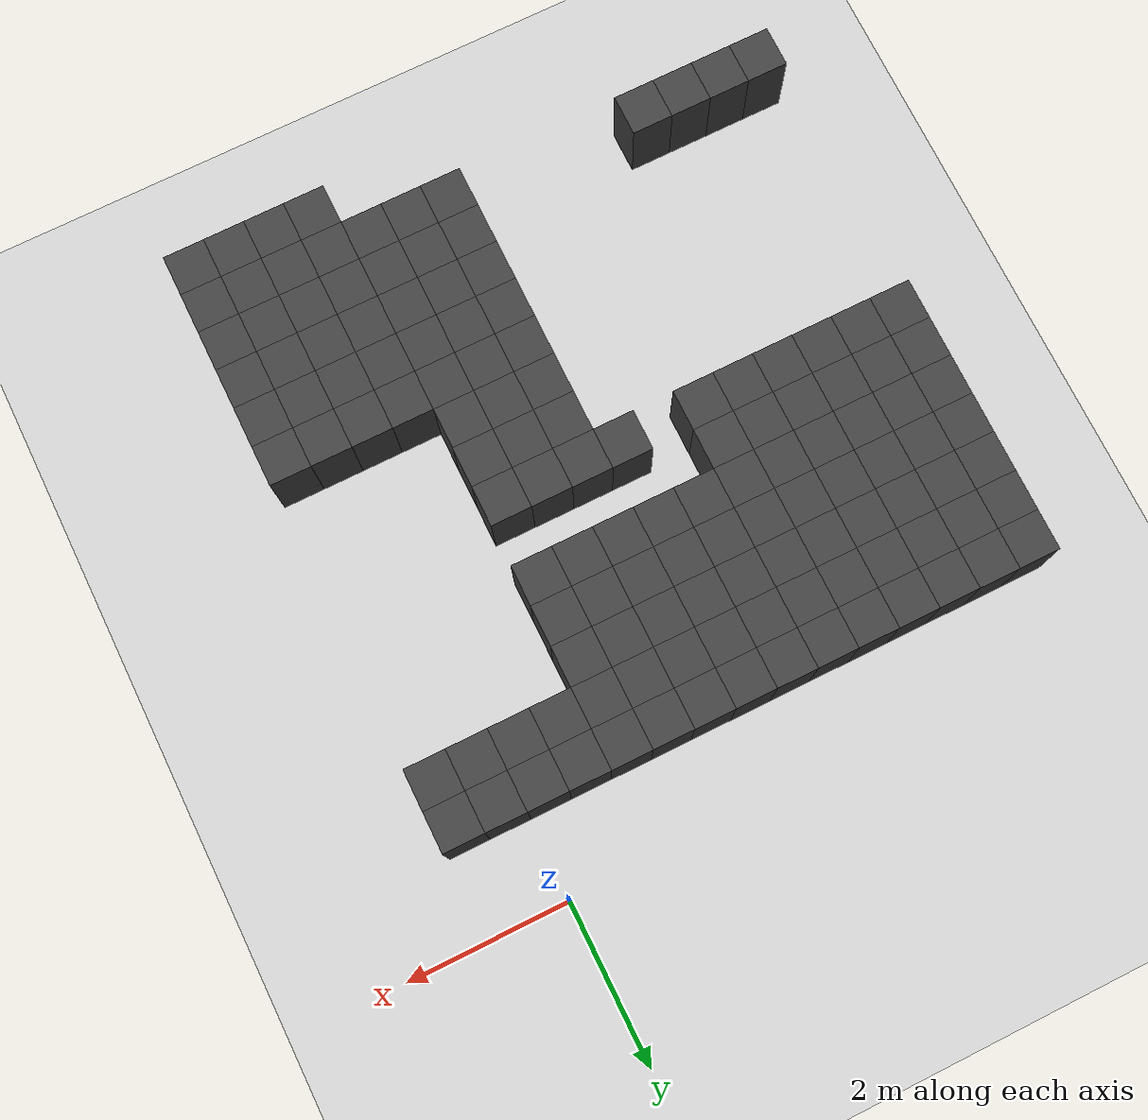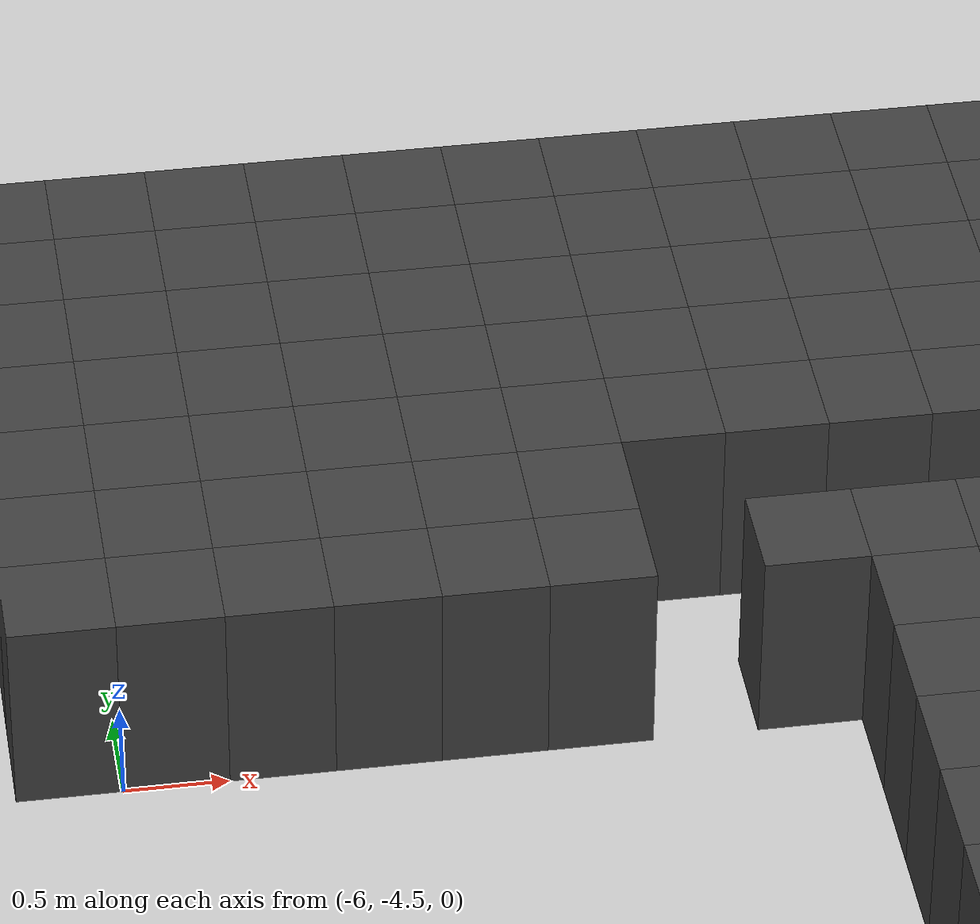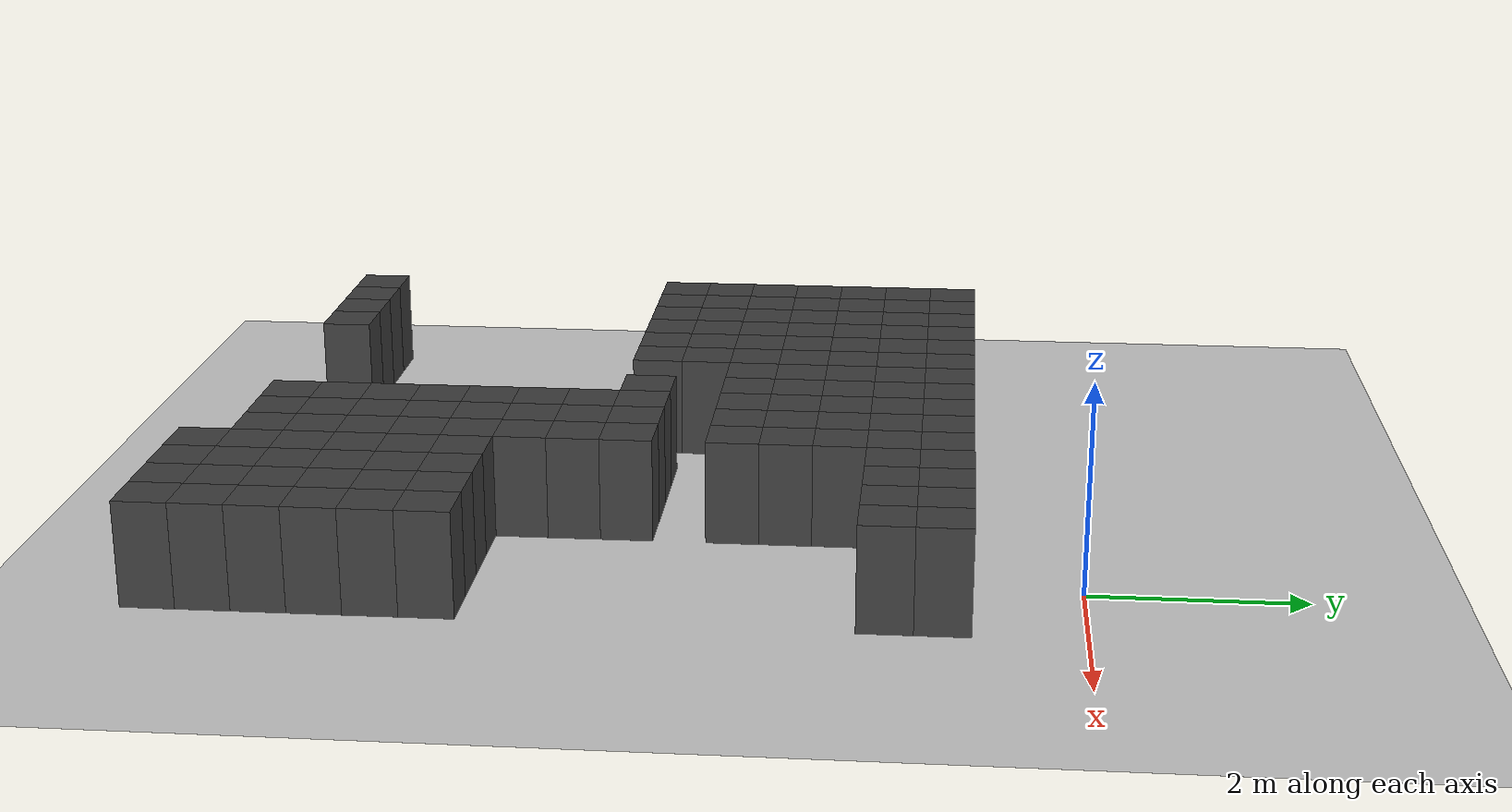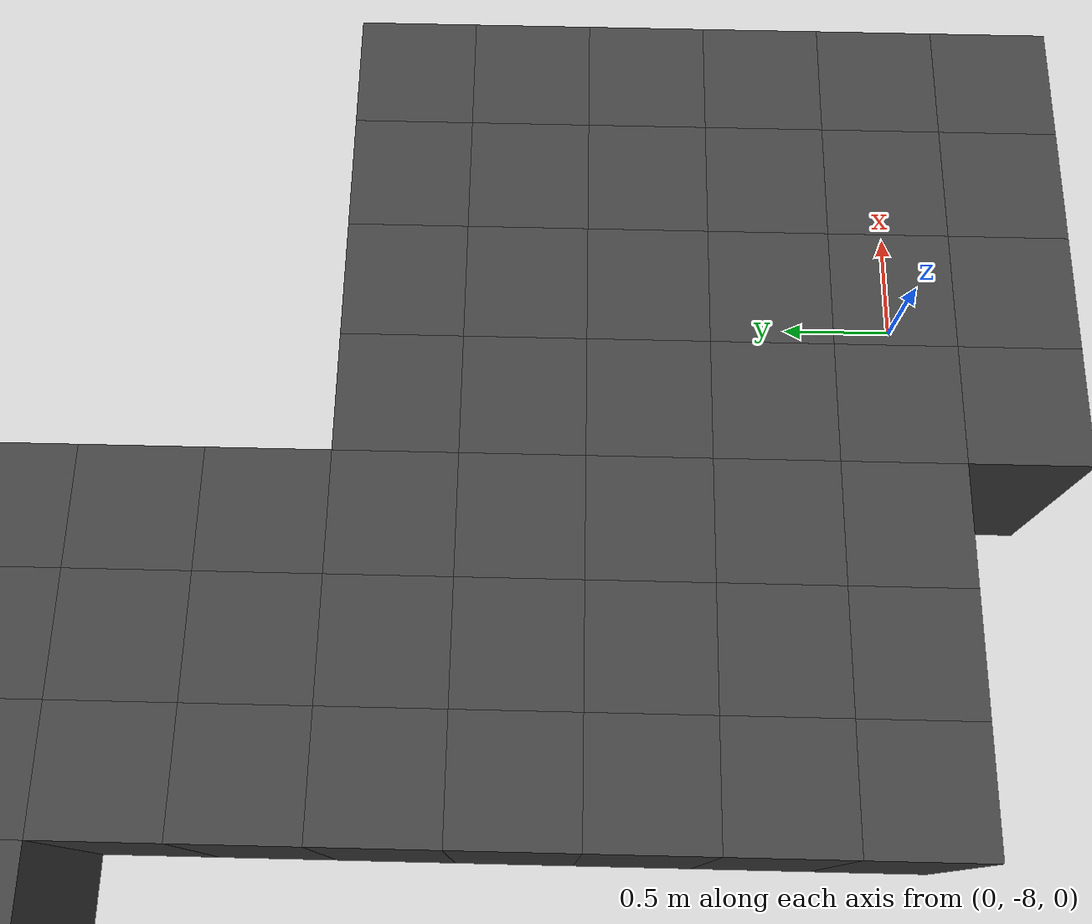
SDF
<sdf version="1.7">
 <world name="map_12356">
  <model name="ground_plane">
   <static>true</static>
   <link name="link">
    <collision name="collision">
     <geometry><plane><normal>0 0 1</normal><size>200 200</size></plane></geometry>
    </collision>
    <visual name="visual">
     <geometry><plane><normal>0 0 1</normal><size>200 200</size></plane></geometry>
     <material><ambient>0.8 0.8 0.8 1</ambient><diffuse>0.8 0.8 0.8 1</diffuse></material>
    </visual>
   </link>
  </model>
  <model name="maze_environment">
   <static>true</static>
   <link name="wall_1064">
    <pose>-6.250 -1.250 0.500 0 0 0</pose>
    <collision name="col"><geometry><box><size>0.5 0.5 1.0</size></box></geometry></collision>
    <visual name="vis">
     <geometry><box><size>0.5 0.5 1.0</size></box></geometry>
     <material><ambient>0.15 0.15 0.15 1</ambient><diffuse>0.25 0.25 0.25 1</diffuse></material>
    </visual>
   </link>
   <link name="wall_1065">
    <pose>-5.750 -1.250 0.500 0 0 0</pose>
    <collision name="col"><geometry><box><size>0.5 0.5 1.0</size></box></geometry></collision>
    <visual name="vis">
     <geometry><box><size>0.5 0.5 1.0</size></box></geometry>
     <material><ambient>0.15 0.15 0.15 1</ambient><diffuse>0.25 0.25 0.25 1</diffuse></material>
    </visual>
   </link>
   <link name="wall_1066">
    <pose>-5.250 -1.250 0.500 0 0 0</pose>
    <collision name="col"><geometry><box><size>0.5 0.5 1.0</size></box></geometry></collision>
    <visual name="vis">
     <geometry><box><size>0.5 0.5 1.0</size></box></geometry>
     <material><ambient>0.15 0.15 0.15 1</ambient><diffuse>0.25 0.25 0.25 1</diffuse></material>
    </visual>
   </link>
   <link name="wall_1067">
    <pose>-4.750 -1.250 0.500 0 0 0</pose>
    <collision name="col"><geometry><box><size>0.5 0.5 1.0</size></box></geometry></collision>
    <visual name="vis">
     <geometry><box><size>0.5 0.5 1.0</size></box></geometry>
     <material><ambient>0.15 0.15 0.15 1</ambient><diffuse>0.25 0.25 0.25 1</diffuse></material>
    </visual>
   </link>
   <link name="wall_1068">
    <pose>-4.250 -1.250 0.500 0 0 0</pose>
    <collision name="col"><geometry><box><size>0.5 0.5 1.0</size></box></geometry></collision>
    <visual name="vis">
     <geometry><box><size>0.5 0.5 1.0</size></box></geometry>
     <material><ambient>0.15 0.15 0.15 1</ambient><diffuse>0.25 0.25 0.25 1</diffuse></material>
    </visual>
   </link>
   <link name="wall_1069">
    <pose>-3.750 -1.250 0.500 0 0 0</pose>
    <collision name="col"><geometry><box><size>0.5 0.5 1.0</size></box></geometry></collision>
    <visual name="vis">
     <geometry><box><size>0.5 0.5 1.0</size></box></geometry>
     <material><ambient>0.15 0.15 0.15 1</ambient><diffuse>0.25 0.25 0.25 1</diffuse></material>
    </visual>
   </link>
   <link name="wall_1070">
    <pose>-3.250 -1.250 0.500 0 0 0</pose>
    <collision name="col"><geometry><box><size>0.5 0.5 1.0</size></box></geometry></collision>
    <visual name="vis">
     <geometry><box><size>0.5 0.5 1.0</size></box></geometry>
     <material><ambient>0.15 0.15 0.15 1</ambient><diffuse>0.25 0.25 0.25 1</diffuse></material>
    </visual>
   </link>
   <link name="wall_1071">
    <pose>-2.750 -1.250 0.500 0 0 0</pose>
    <collision name="col"><geometry><box><size>0.5 0.5 1.0</size></box></geometry></collision>
    <visual name="vis">
     <geometry><box><size>0.5 0.5 1.0</size></box></geometry>
     <material><ambient>0.15 0.15 0.15 1</ambient><diffuse>0.25 0.25 0.25 1</diffuse></material>
    </visual>
   </link>
   <link name="wall_1072">
    <pose>-2.250 -1.250 0.500 0 0 0</pose>
    <collision name="col"><geometry><box><size>0.5 0.5 1.0</size></box></geometry></collision>
    <visual name="vis">
     <geometry><box><size>0.5 0.5 1.0</size></box></geometry>
     <material><ambient>0.15 0.15 0.15 1</ambient><diffuse>0.25 0.25 0.25 1</diffuse></material>
    </visual>
   </link>
   <link name="wall_1073">
    <pose>-1.750 -1.250 0.500 0 0 0</pose>
    <collision name="col"><geometry><box><size>0.5 0.5 1.0</size></box></geometry></collision>
    <visual name="vis">
     <geometry><box><size>0.5 0.5 1.0</size></box></geometry>
     <material><ambient>0.15 0.15 0.15 1</ambient><diffuse>0.25 0.25 0.25 1</diffuse></material>
    </visual>
   </link>
   <link name="wall_1074">
    <pose>-1.250 -1.250 0.500 0 0 0</pose>
    <collision name="col"><geometry><box><size>0.5 0.5 1.0</size></box></geometry></collision>
    <visual name="vis">
     <geometry><box><size>0.5 0.5 1.0</size></box></geometry>
     <material><ambient>0.15 0.15 0.15 1</ambient><diffuse>0.25 0.25 0.25 1</diffuse></material>
    </visual>
   </link>
   <link name="wall_1075">
    <pose>-0.750 -1.250 0.500 0 0 0</pose>
    <collision name="col"><geometry><box><size>0.5 0.5 1.0</size></box></geometry></collision>
    <visual name="vis">
     <geometry><box><size>0.5 0.5 1.0</size></box></geometry>
     <material><ambient>0.15 0.15 0.15 1</ambient><diffuse>0.25 0.25 0.25 1</diffuse></material>
    </visual>
   </link>
   <link name="wall_1076">
    <pose>-0.250 -1.250 0.500 0 0 0</pose>
    <collision name="col"><geometry><box><size>0.5 0.5 1.0</size></box></geometry></collision>
    <visual name="vis">
     <geometry><box><size>0.5 0.5 1.0</size></box></geometry>
     <material><ambient>0.15 0.15 0.15 1</ambient><diffuse>0.25 0.25 0.25 1</diffuse></material>
    </visual>
   </link>
   <link name="wall_1077">
    <pose>0.250 -1.250 0.500 0 0 0</pose>
    <collision name="col"><geometry><box><size>0.5 0.5 1.0</size></box></geometry></collision>
    <visual name="vis">
     <geometry><box><size>0.5 0.5 1.0</size></box></geometry>
     <material><ambient>0.15 0.15 0.15 1</ambient><diffuse>0.25 0.25 0.25 1</diffuse></material>
    </visual>
   </link>
   <link name="wall_1078">
    <pose>0.750 -1.250 0.500 0 0 0</pose>
    <collision name="col"><geometry><box><size>0.5 0.5 1.0</size></box></geometry></collision>
    <visual name="vis">
     <geometry><box><size>0.5 0.5 1.0</size></box></geometry>
     <material><ambient>0.15 0.15 0.15 1</ambient><diffuse>0.25 0.25 0.25 1</diffuse></material>
    </visual>
   </link>
   <link name="wall_1106">
    <pose>-6.250 -1.750 0.500 0 0 0</pose>
    <collision name="col"><geometry><box><size>0.5 0.5 1.0</size></box></geometry></collision>
    <visual name="vis">
     <geometry><box><size>0.5 0.5 1.0</size></box></geometry>
     <material><ambient>0.15 0.15 0.15 1</ambient><diffuse>0.25 0.25 0.25 1</diffuse></material>
    </visual>
   </link>
   <link name="wall_1107">
    <pose>-5.750 -1.750 0.500 0 0 0</pose>
    <collision name="col"><geometry><box><size>0.5 0.5 1.0</size></box></geometry></collision>
    <visual name="vis">
     <geometry><box><size>0.5 0.5 1.0</size></box></geometry>
     <material><ambient>0.15 0.15 0.15 1</ambient><diffuse>0.25 0.25 0.25 1</diffuse></material>
    </visual>
   </link>
   <link name="wall_1108">
    <pose>-5.250 -1.750 0.500 0 0 0</pose>
    <collision name="col"><geometry><box><size>0.5 0.5 1.0</size></box></geometry></collision>
    <visual name="vis">
     <geometry><box><size>0.5 0.5 1.0</size></box></geometry>
     <material><ambient>0.15 0.15 0.15 1</ambient><diffuse>0.25 0.25 0.25 1</diffuse></material>
    </visual>
   </link>
   <link name="wall_1109">
    <pose>-4.750 -1.750 0.500 0 0 0</pose>
    <collision name="col"><geometry><box><size>0.5 0.5 1.0</size></box></geometry></collision>
    <visual name="vis">
     <geometry><box><size>0.5 0.5 1.0</size></box></geometry>
     <material><ambient>0.15 0.15 0.15 1</ambient><diffuse>0.25 0.25 0.25 1</diffuse></material>
    </visual>
   </link>
   <link name="wall_1110">
    <pose>-4.250 -1.750 0.500 0 0 0</pose>
    <collision name="col"><geometry><box><size>0.5 0.5 1.0</size></box></geometry></collision>
    <visual name="vis">
     <geometry><box><size>0.5 0.5 1.0</size></box></geometry>
     <material><ambient>0.15 0.15 0.15 1</ambient><diffuse>0.25 0.25 0.25 1</diffuse></material>
    </visual>
   </link>
   <link name="wall_1111">
    <pose>-3.750 -1.750 0.500 0 0 0</pose>
    <collision name="col"><geometry><box><size>0.5 0.5 1.0</size></box></geometry></collision>
    <visual name="vis">
     <geometry><box><size>0.5 0.5 1.0</size></box></geometry>
     <material><ambient>0.15 0.15 0.15 1</ambient><diffuse>0.25 0.25 0.25 1</diffuse></material>
    </visual>
   </link>
   <link name="wall_1112">
    <pose>-3.250 -1.750 0.500 0 0 0</pose>
    <collision name="col"><geometry><box><size>0.5 0.5 1.0</size></box></geometry></collision>
    <visual name="vis">
     <geometry><box><size>0.5 0.5 1.0</size></box></geometry>
     <material><ambient>0.15 0.15 0.15 1</ambient><diffuse>0.25 0.25 0.25 1</diffuse></material>
    </visual>
   </link>
   <link name="wall_1113">
    <pose>-2.750 -1.750 0.500 0 0 0</pose>
    <collision name="col"><geometry><box><size>0.5 0.5 1.0</size></box></geometry></collision>
    <visual name="vis">
     <geometry><box><size>0.5 0.5 1.0</size></box></geometry>
     <material><ambient>0.15 0.15 0.15 1</ambient><diffuse>0.25 0.25 0.25 1</diffuse></material>
    </visual>
   </link>
   <link name="wall_1114">
    <pose>-2.250 -1.750 0.500 0 0 0</pose>
    <collision name="col"><geometry><box><size>0.5 0.5 1.0</size></box></geometry></collision>
    <visual name="vis">
     <geometry><box><size>0.5 0.5 1.0</size></box></geometry>
     <material><ambient>0.15 0.15 0.15 1</ambient><diffuse>0.25 0.25 0.25 1</diffuse></material>
    </visual>
   </link>
   <link name="wall_1115">
    <pose>-1.750 -1.750 0.500 0 0 0</pose>
    <collision name="col"><geometry><box><size>0.5 0.5 1.0</size></box></geometry></collision>
    <visual name="vis">
     <geometry><box><size>0.5 0.5 1.0</size></box></geometry>
     <material><ambient>0.15 0.15 0.15 1</ambient><diffuse>0.25 0.25 0.25 1</diffuse></material>
    </visual>
   </link>
   <link name="wall_1116">
    <pose>-1.250 -1.750 0.500 0 0 0</pose>
    <collision name="col"><geometry><box><size>0.5 0.5 1.0</size></box></geometry></collision>
    <visual name="vis">
     <geometry><box><size>0.5 0.5 1.0</size></box></geometry>
     <material><ambient>0.15 0.15 0.15 1</ambient><diffuse>0.25 0.25 0.25 1</diffuse></material>
    </visual>
   </link>
   <link name="wall_1117">
    <pose>-0.750 -1.750 0.500 0 0 0</pose>
    <collision name="col"><geometry><box><size>0.5 0.5 1.0</size></box></geometry></collision>
    <visual name="vis">
     <geometry><box><size>0.5 0.5 1.0</size></box></geometry>
     <material><ambient>0.15 0.15 0.15 1</ambient><diffuse>0.25 0.25 0.25 1</diffuse></material>
    </visual>
   </link>
   <link name="wall_1118">
    <pose>-0.250 -1.750 0.500 0 0 0</pose>
    <collision name="col"><geometry><box><size>0.5 0.5 1.0</size></box></geometry></collision>
    <visual name="vis">
     <geometry><box><size>0.5 0.5 1.0</size></box></geometry>
     <material><ambient>0.15 0.15 0.15 1</ambient><diffuse>0.25 0.25 0.25 1</diffuse></material>
    </visual>
   </link>
   <link name="wall_1119">
    <pose>0.250 -1.750 0.500 0 0 0</pose>
    <collision name="col"><geometry><box><size>0.5 0.5 1.0</size></box></geometry></collision>
    <visual name="vis">
     <geometry><box><size>0.5 0.5 1.0</size></box></geometry>
     <material><ambient>0.15 0.15 0.15 1</ambient><diffuse>0.25 0.25 0.25 1</diffuse></material>
    </visual>
   </link>
   <link name="wall_1120">
    <pose>0.750 -1.750 0.500 0 0 0</pose>
    <collision name="col"><geometry><box><size>0.5 0.5 1.0</size></box></geometry></collision>
    <visual name="vis">
     <geometry><box><size>0.5 0.5 1.0</size></box></geometry>
     <material><ambient>0.15 0.15 0.15 1</ambient><diffuse>0.25 0.25 0.25 1</diffuse></material>
    </visual>
   </link>
   <link name="wall_1151">
    <pose>-6.250 -2.250 0.500 0 0 0</pose>
    <collision name="col"><geometry><box><size>0.5 0.5 1.0</size></box></geometry></collision>
    <visual name="vis">
     <geometry><box><size>0.5 0.5 1.0</size></box></geometry>
     <material><ambient>0.15 0.15 0.15 1</ambient><diffuse>0.25 0.25 0.25 1</diffuse></material>
    </visual>
   </link>
   <link name="wall_1152">
    <pose>-5.750 -2.250 0.500 0 0 0</pose>
    <collision name="col"><geometry><box><size>0.5 0.5 1.0</size></box></geometry></collision>
    <visual name="vis">
     <geometry><box><size>0.5 0.5 1.0</size></box></geometry>
     <material><ambient>0.15 0.15 0.15 1</ambient><diffuse>0.25 0.25 0.25 1</diffuse></material>
    </visual>
   </link>
   <link name="wall_1153">
    <pose>-5.250 -2.250 0.500 0 0 0</pose>
    <collision name="col"><geometry><box><size>0.5 0.5 1.0</size></box></geometry></collision>
    <visual name="vis">
     <geometry><box><size>0.5 0.5 1.0</size></box></geometry>
     <material><ambient>0.15 0.15 0.15 1</ambient><diffuse>0.25 0.25 0.25 1</diffuse></material>
    </visual>
   </link>
   <link name="wall_1154">
    <pose>-4.750 -2.250 0.500 0 0 0</pose>
    <collision name="col"><geometry><box><size>0.5 0.5 1.0</size></box></geometry></collision>
    <visual name="vis">
     <geometry><box><size>0.5 0.5 1.0</size></box></geometry>
     <material><ambient>0.15 0.15 0.15 1</ambient><diffuse>0.25 0.25 0.25 1</diffuse></material>
    </visual>
   </link>
   <link name="wall_1155">
    <pose>-4.250 -2.250 0.500 0 0 0</pose>
    <collision name="col"><geometry><box><size>0.5 0.5 1.0</size></box></geometry></collision>
    <visual name="vis">
     <geometry><box><size>0.5 0.5 1.0</size></box></geometry>
     <material><ambient>0.15 0.15 0.15 1</ambient><diffuse>0.25 0.25 0.25 1</diffuse></material>
    </visual>
   </link>
   <link name="wall_1156">
    <pose>-3.750 -2.250 0.500 0 0 0</pose>
    <collision name="col"><geometry><box><size>0.5 0.5 1.0</size></box></geometry></collision>
    <visual name="vis">
     <geometry><box><size>0.5 0.5 1.0</size></box></geometry>
     <material><ambient>0.15 0.15 0.15 1</ambient><diffuse>0.25 0.25 0.25 1</diffuse></material>
    </visual>
   </link>
   <link name="wall_1157">
    <pose>-3.250 -2.250 0.500 0 0 0</pose>
    <collision name="col"><geometry><box><size>0.5 0.5 1.0</size></box></geometry></collision>
    <visual name="vis">
     <geometry><box><size>0.5 0.5 1.0</size></box></geometry>
     <material><ambient>0.15 0.15 0.15 1</ambient><diffuse>0.25 0.25 0.25 1</diffuse></material>
    </visual>
   </link>
   <link name="wall_1158">
    <pose>-2.750 -2.250 0.500 0 0 0</pose>
    <collision name="col"><geometry><box><size>0.5 0.5 1.0</size></box></geometry></collision>
    <visual name="vis">
     <geometry><box><size>0.5 0.5 1.0</size></box></geometry>
     <material><ambient>0.15 0.15 0.15 1</ambient><diffuse>0.25 0.25 0.25 1</diffuse></material>
    </visual>
   </link>
   <link name="wall_1159">
    <pose>-2.250 -2.250 0.500 0 0 0</pose>
    <collision name="col"><geometry><box><size>0.5 0.5 1.0</size></box></geometry></collision>
    <visual name="vis">
     <geometry><box><size>0.5 0.5 1.0</size></box></geometry>
     <material><ambient>0.15 0.15 0.15 1</ambient><diffuse>0.25 0.25 0.25 1</diffuse></material>
    </visual>
   </link>
   <link name="wall_1160">
    <pose>-1.750 -2.250 0.500 0 0 0</pose>
    <collision name="col"><geometry><box><size>0.5 0.5 1.0</size></box></geometry></collision>
    <visual name="vis">
     <geometry><box><size>0.5 0.5 1.0</size></box></geometry>
     <material><ambient>0.15 0.15 0.15 1</ambient><diffuse>0.25 0.25 0.25 1</diffuse></material>
    </visual>
   </link>
   <link name="wall_1161">
    <pose>-1.250 -2.250 0.500 0 0 0</pose>
    <collision name="col"><geometry><box><size>0.5 0.5 1.0</size></box></geometry></collision>
    <visual name="vis">
     <geometry><box><size>0.5 0.5 1.0</size></box></geometry>
     <material><ambient>0.15 0.15 0.15 1</ambient><diffuse>0.25 0.25 0.25 1</diffuse></material>
    </visual>
   </link>
   <link name="wall_1192">
    <pose>-6.250 -2.750 0.500 0 0 0</pose>
    <collision name="col"><geometry><box><size>0.5 0.5 1.0</size></box></geometry></collision>
    <visual name="vis">
     <geometry><box><size>0.5 0.5 1.0</size></box></geometry>
     <material><ambient>0.15 0.15 0.15 1</ambient><diffuse>0.25 0.25 0.25 1</diffuse></material>
    </visual>
   </link>
   <link name="wall_1193">
    <pose>-5.750 -2.750 0.500 0 0 0</pose>
    <collision name="col"><geometry><box><size>0.5 0.5 1.0</size></box></geometry></collision>
    <visual name="vis">
     <geometry><box><size>0.5 0.5 1.0</size></box></geometry>
     <material><ambient>0.15 0.15 0.15 1</ambient><diffuse>0.25 0.25 0.25 1</diffuse></material>
    </visual>
   </link>
   <link name="wall_1194">
    <pose>-5.250 -2.750 0.500 0 0 0</pose>
    <collision name="col"><geometry><box><size>0.5 0.5 1.0</size></box></geometry></collision>
    <visual name="vis">
     <geometry><box><size>0.5 0.5 1.0</size></box></geometry>
     <material><ambient>0.15 0.15 0.15 1</ambient><diffuse>0.25 0.25 0.25 1</diffuse></material>
    </visual>
   </link>
   <link name="wall_1195">
    <pose>-4.750 -2.750 0.500 0 0 0</pose>
    <collision name="col"><geometry><box><size>0.5 0.5 1.0</size></box></geometry></collision>
    <visual name="vis">
     <geometry><box><size>0.5 0.5 1.0</size></box></geometry>
     <material><ambient>0.15 0.15 0.15 1</ambient><diffuse>0.25 0.25 0.25 1</diffuse></material>
    </visual>
   </link>
   <link name="wall_1196">
    <pose>-4.250 -2.750 0.500 0 0 0</pose>
    <collision name="col"><geometry><box><size>0.5 0.5 1.0</size></box></geometry></collision>
    <visual name="vis">
     <geometry><box><size>0.5 0.5 1.0</size></box></geometry>
     <material><ambient>0.15 0.15 0.15 1</ambient><diffuse>0.25 0.25 0.25 1</diffuse></material>
    </visual>
   </link>
   <link name="wall_1197">
    <pose>-3.750 -2.750 0.500 0 0 0</pose>
    <collision name="col"><geometry><box><size>0.5 0.5 1.0</size></box></geometry></collision>
    <visual name="vis">
     <geometry><box><size>0.5 0.5 1.0</size></box></geometry>
     <material><ambient>0.15 0.15 0.15 1</ambient><diffuse>0.25 0.25 0.25 1</diffuse></material>
    </visual>
   </link>
   <link name="wall_1198">
    <pose>-3.250 -2.750 0.500 0 0 0</pose>
    <collision name="col"><geometry><box><size>0.5 0.5 1.0</size></box></geometry></collision>
    <visual name="vis">
     <geometry><box><size>0.5 0.5 1.0</size></box></geometry>
     <material><ambient>0.15 0.15 0.15 1</ambient><diffuse>0.25 0.25 0.25 1</diffuse></material>
    </visual>
   </link>
   <link name="wall_1199">
    <pose>-2.750 -2.750 0.500 0 0 0</pose>
    <collision name="col"><geometry><box><size>0.5 0.5 1.0</size></box></geometry></collision>
    <visual name="vis">
     <geometry><box><size>0.5 0.5 1.0</size></box></geometry>
     <material><ambient>0.15 0.15 0.15 1</ambient><diffuse>0.25 0.25 0.25 1</diffuse></material>
    </visual>
   </link>
   <link name="wall_1200">
    <pose>-2.250 -2.750 0.500 0 0 0</pose>
    <collision name="col"><geometry><box><size>0.5 0.5 1.0</size></box></geometry></collision>
    <visual name="vis">
     <geometry><box><size>0.5 0.5 1.0</size></box></geometry>
     <material><ambient>0.15 0.15 0.15 1</ambient><diffuse>0.25 0.25 0.25 1</diffuse></material>
    </visual>
   </link>
   <link name="wall_1201">
    <pose>-1.750 -2.750 0.500 0 0 0</pose>
    <collision name="col"><geometry><box><size>0.5 0.5 1.0</size></box></geometry></collision>
    <visual name="vis">
     <geometry><box><size>0.5 0.5 1.0</size></box></geometry>
     <material><ambient>0.15 0.15 0.15 1</ambient><diffuse>0.25 0.25 0.25 1</diffuse></material>
    </visual>
   </link>
   <link name="wall_1202">
    <pose>-1.250 -2.750 0.500 0 0 0</pose>
    <collision name="col"><geometry><box><size>0.5 0.5 1.0</size></box></geometry></collision>
    <visual name="vis">
     <geometry><box><size>0.5 0.5 1.0</size></box></geometry>
     <material><ambient>0.15 0.15 0.15 1</ambient><diffuse>0.25 0.25 0.25 1</diffuse></material>
    </visual>
   </link>
   <link name="wall_1233">
    <pose>-6.250 -3.250 0.500 0 0 0</pose>
    <collision name="col"><geometry><box><size>0.5 0.5 1.0</size></box></geometry></collision>
    <visual name="vis">
     <geometry><box><size>0.5 0.5 1.0</size></box></geometry>
     <material><ambient>0.15 0.15 0.15 1</ambient><diffuse>0.25 0.25 0.25 1</diffuse></material>
    </visual>
   </link>
   <link name="wall_1234">
    <pose>-5.750 -3.250 0.500 0 0 0</pose>
    <collision name="col"><geometry><box><size>0.5 0.5 1.0</size></box></geometry></collision>
    <visual name="vis">
     <geometry><box><size>0.5 0.5 1.0</size></box></geometry>
     <material><ambient>0.15 0.15 0.15 1</ambient><diffuse>0.25 0.25 0.25 1</diffuse></material>
    </visual>
   </link>
   <link name="wall_1235">
    <pose>-5.250 -3.250 0.500 0 0 0</pose>
    <collision name="col"><geometry><box><size>0.5 0.5 1.0</size></box></geometry></collision>
    <visual name="vis">
     <geometry><box><size>0.5 0.5 1.0</size></box></geometry>
     <material><ambient>0.15 0.15 0.15 1</ambient><diffuse>0.25 0.25 0.25 1</diffuse></material>
    </visual>
   </link>
   <link name="wall_1236">
    <pose>-4.750 -3.250 0.500 0 0 0</pose>
    <collision name="col"><geometry><box><size>0.5 0.5 1.0</size></box></geometry></collision>
    <visual name="vis">
     <geometry><box><size>0.5 0.5 1.0</size></box></geometry>
     <material><ambient>0.15 0.15 0.15 1</ambient><diffuse>0.25 0.25 0.25 1</diffuse></material>
    </visual>
   </link>
   <link name="wall_1237">
    <pose>-4.250 -3.250 0.500 0 0 0</pose>
    <collision name="col"><geometry><box><size>0.5 0.5 1.0</size></box></geometry></collision>
    <visual name="vis">
     <geometry><box><size>0.5 0.5 1.0</size></box></geometry>
     <material><ambient>0.15 0.15 0.15 1</ambient><diffuse>0.25 0.25 0.25 1</diffuse></material>
    </visual>
   </link>
   <link name="wall_1238">
    <pose>-3.750 -3.250 0.500 0 0 0</pose>
    <collision name="col"><geometry><box><size>0.5 0.5 1.0</size></box></geometry></collision>
    <visual name="vis">
     <geometry><box><size>0.5 0.5 1.0</size></box></geometry>
     <material><ambient>0.15 0.15 0.15 1</ambient><diffuse>0.25 0.25 0.25 1</diffuse></material>
    </visual>
   </link>
   <link name="wall_1239">
    <pose>-3.250 -3.250 0.500 0 0 0</pose>
    <collision name="col"><geometry><box><size>0.5 0.5 1.0</size></box></geometry></collision>
    <visual name="vis">
     <geometry><box><size>0.5 0.5 1.0</size></box></geometry>
     <material><ambient>0.15 0.15 0.15 1</ambient><diffuse>0.25 0.25 0.25 1</diffuse></material>
    </visual>
   </link>
   <link name="wall_1240">
    <pose>-2.750 -3.250 0.500 0 0 0</pose>
    <collision name="col"><geometry><box><size>0.5 0.5 1.0</size></box></geometry></collision>
    <visual name="vis">
     <geometry><box><size>0.5 0.5 1.0</size></box></geometry>
     <material><ambient>0.15 0.15 0.15 1</ambient><diffuse>0.25 0.25 0.25 1</diffuse></material>
    </visual>
   </link>
   <link name="wall_1241">
    <pose>-2.250 -3.250 0.500 0 0 0</pose>
    <collision name="col"><geometry><box><size>0.5 0.5 1.0</size></box></geometry></collision>
    <visual name="vis">
     <geometry><box><size>0.5 0.5 1.0</size></box></geometry>
     <material><ambient>0.15 0.15 0.15 1</ambient><diffuse>0.25 0.25 0.25 1</diffuse></material>
    </visual>
   </link>
   <link name="wall_1242">
    <pose>-1.750 -3.250 0.500 0 0 0</pose>
    <collision name="col"><geometry><box><size>0.5 0.5 1.0</size></box></geometry></collision>
    <visual name="vis">
     <geometry><box><size>0.5 0.5 1.0</size></box></geometry>
     <material><ambient>0.15 0.15 0.15 1</ambient><diffuse>0.25 0.25 0.25 1</diffuse></material>
    </visual>
   </link>
   <link name="wall_1243">
    <pose>-1.250 -3.250 0.500 0 0 0</pose>
    <collision name="col"><geometry><box><size>0.5 0.5 1.0</size></box></geometry></collision>
    <visual name="vis">
     <geometry><box><size>0.5 0.5 1.0</size></box></geometry>
     <material><ambient>0.15 0.15 0.15 1</ambient><diffuse>0.25 0.25 0.25 1</diffuse></material>
    </visual>
   </link>
   <link name="wall_1274">
    <pose>-6.250 -3.750 0.500 0 0 0</pose>
    <collision name="col"><geometry><box><size>0.5 0.5 1.0</size></box></geometry></collision>
    <visual name="vis">
     <geometry><box><size>0.5 0.5 1.0</size></box></geometry>
     <material><ambient>0.15 0.15 0.15 1</ambient><diffuse>0.25 0.25 0.25 1</diffuse></material>
    </visual>
   </link>
   <link name="wall_1275">
    <pose>-5.750 -3.750 0.500 0 0 0</pose>
    <collision name="col"><geometry><box><size>0.5 0.5 1.0</size></box></geometry></collision>
    <visual name="vis">
     <geometry><box><size>0.5 0.5 1.0</size></box></geometry>
     <material><ambient>0.15 0.15 0.15 1</ambient><diffuse>0.25 0.25 0.25 1</diffuse></material>
    </visual>
   </link>
   <link name="wall_1276">
    <pose>-5.250 -3.750 0.500 0 0 0</pose>
    <collision name="col"><geometry><box><size>0.5 0.5 1.0</size></box></geometry></collision>
    <visual name="vis">
     <geometry><box><size>0.5 0.5 1.0</size></box></geometry>
     <material><ambient>0.15 0.15 0.15 1</ambient><diffuse>0.25 0.25 0.25 1</diffuse></material>
    </visual>
   </link>
   <link name="wall_1277">
    <pose>-4.750 -3.750 0.500 0 0 0</pose>
    <collision name="col"><geometry><box><size>0.5 0.5 1.0</size></box></geometry></collision>
    <visual name="vis">
     <geometry><box><size>0.5 0.5 1.0</size></box></geometry>
     <material><ambient>0.15 0.15 0.15 1</ambient><diffuse>0.25 0.25 0.25 1</diffuse></material>
    </visual>
   </link>
   <link name="wall_1278">
    <pose>-4.250 -3.750 0.500 0 0 0</pose>
    <collision name="col"><geometry><box><size>0.5 0.5 1.0</size></box></geometry></collision>
    <visual name="vis">
     <geometry><box><size>0.5 0.5 1.0</size></box></geometry>
     <material><ambient>0.15 0.15 0.15 1</ambient><diffuse>0.25 0.25 0.25 1</diffuse></material>
    </visual>
   </link>
   <link name="wall_1279">
    <pose>-3.750 -3.750 0.500 0 0 0</pose>
    <collision name="col"><geometry><box><size>0.5 0.5 1.0</size></box></geometry></collision>
    <visual name="vis">
     <geometry><box><size>0.5 0.5 1.0</size></box></geometry>
     <material><ambient>0.15 0.15 0.15 1</ambient><diffuse>0.25 0.25 0.25 1</diffuse></material>
    </visual>
   </link>
   <link name="wall_1310">
    <pose>-6.250 -4.250 0.500 0 0 0</pose>
    <collision name="col"><geometry><box><size>0.5 0.5 1.0</size></box></geometry></collision>
    <visual name="vis">
     <geometry><box><size>0.5 0.5 1.0</size></box></geometry>
     <material><ambient>0.15 0.15 0.15 1</ambient><diffuse>0.25 0.25 0.25 1</diffuse></material>
    </visual>
   </link>
   <link name="wall_1311">
    <pose>-5.750 -4.250 0.500 0 0 0</pose>
    <collision name="col"><geometry><box><size>0.5 0.5 1.0</size></box></geometry></collision>
    <visual name="vis">
     <geometry><box><size>0.5 0.5 1.0</size></box></geometry>
     <material><ambient>0.15 0.15 0.15 1</ambient><diffuse>0.25 0.25 0.25 1</diffuse></material>
    </visual>
   </link>
   <link name="wall_1312">
    <pose>-5.250 -4.250 0.500 0 0 0</pose>
    <collision name="col"><geometry><box><size>0.5 0.5 1.0</size></box></geometry></collision>
    <visual name="vis">
     <geometry><box><size>0.5 0.5 1.0</size></box></geometry>
     <material><ambient>0.15 0.15 0.15 1</ambient><diffuse>0.25 0.25 0.25 1</diffuse></material>
    </visual>
   </link>
   <link name="wall_1313">
    <pose>-4.750 -4.250 0.500 0 0 0</pose>
    <collision name="col"><geometry><box><size>0.5 0.5 1.0</size></box></geometry></collision>
    <visual name="vis">
     <geometry><box><size>0.5 0.5 1.0</size></box></geometry>
     <material><ambient>0.15 0.15 0.15 1</ambient><diffuse>0.25 0.25 0.25 1</diffuse></material>
    </visual>
   </link>
   <link name="wall_1314">
    <pose>-4.250 -4.250 0.500 0 0 0</pose>
    <collision name="col"><geometry><box><size>0.5 0.5 1.0</size></box></geometry></collision>
    <visual name="vis">
     <geometry><box><size>0.5 0.5 1.0</size></box></geometry>
     <material><ambient>0.15 0.15 0.15 1</ambient><diffuse>0.25 0.25 0.25 1</diffuse></material>
    </visual>
   </link>
   <link name="wall_1315">
    <pose>-3.750 -4.250 0.500 0 0 0</pose>
    <collision name="col"><geometry><box><size>0.5 0.5 1.0</size></box></geometry></collision>
    <visual name="vis">
     <geometry><box><size>0.5 0.5 1.0</size></box></geometry>
     <material><ambient>0.15 0.15 0.15 1</ambient><diffuse>0.25 0.25 0.25 1</diffuse></material>
    </visual>
   </link>
   <link name="wall_1316">
    <pose>-2.750 -4.250 0.500 0 0 0</pose>
    <collision name="col"><geometry><box><size>0.5 0.5 1.0</size></box></geometry></collision>
    <visual name="vis">
     <geometry><box><size>0.5 0.5 1.0</size></box></geometry>
     <material><ambient>0.15 0.15 0.15 1</ambient><diffuse>0.25 0.25 0.25 1</diffuse></material>
    </visual>
   </link>
   <link name="wall_1317">
    <pose>-2.250 -4.250 0.500 0 0 0</pose>
    <collision name="col"><geometry><box><size>0.5 0.5 1.0</size></box></geometry></collision>
    <visual name="vis">
     <geometry><box><size>0.5 0.5 1.0</size></box></geometry>
     <material><ambient>0.15 0.15 0.15 1</ambient><diffuse>0.25 0.25 0.25 1</diffuse></material>
    </visual>
   </link>
   <link name="wall_1318">
    <pose>-1.750 -4.250 0.500 0 0 0</pose>
    <collision name="col"><geometry><box><size>0.5 0.5 1.0</size></box></geometry></collision>
    <visual name="vis">
     <geometry><box><size>0.5 0.5 1.0</size></box></geometry>
     <material><ambient>0.15 0.15 0.15 1</ambient><diffuse>0.25 0.25 0.25 1</diffuse></material>
    </visual>
   </link>
   <link name="wall_1319">
    <pose>-1.250 -4.250 0.500 0 0 0</pose>
    <collision name="col"><geometry><box><size>0.5 0.5 1.0</size></box></geometry></collision>
    <visual name="vis">
     <geometry><box><size>0.5 0.5 1.0</size></box></geometry>
     <material><ambient>0.15 0.15 0.15 1</ambient><diffuse>0.25 0.25 0.25 1</diffuse></material>
    </visual>
   </link>
   <link name="wall_1350">
    <pose>-2.250 -4.750 0.500 0 0 0</pose>
    <collision name="col"><geometry><box><size>0.5 0.5 1.0</size></box></geometry></collision>
    <visual name="vis">
     <geometry><box><size>0.5 0.5 1.0</size></box></geometry>
     <material><ambient>0.15 0.15 0.15 1</ambient><diffuse>0.25 0.25 0.25 1</diffuse></material>
    </visual>
   </link>
   <link name="wall_1351">
    <pose>-1.750 -4.750 0.500 0 0 0</pose>
    <collision name="col"><geometry><box><size>0.5 0.5 1.0</size></box></geometry></collision>
    <visual name="vis">
     <geometry><box><size>0.5 0.5 1.0</size></box></geometry>
     <material><ambient>0.15 0.15 0.15 1</ambient><diffuse>0.25 0.25 0.25 1</diffuse></material>
    </visual>
   </link>
   <link name="wall_1352">
    <pose>-1.250 -4.750 0.500 0 0 0</pose>
    <collision name="col"><geometry><box><size>0.5 0.5 1.0</size></box></geometry></collision>
    <visual name="vis">
     <geometry><box><size>0.5 0.5 1.0</size></box></geometry>
     <material><ambient>0.15 0.15 0.15 1</ambient><diffuse>0.25 0.25 0.25 1</diffuse></material>
    </visual>
   </link>
   <link name="wall_1383">
    <pose>-2.250 -5.250 0.500 0 0 0</pose>
    <collision name="col"><geometry><box><size>0.5 0.5 1.0</size></box></geometry></collision>
    <visual name="vis">
     <geometry><box><size>0.5 0.5 1.0</size></box></geometry>
     <material><ambient>0.15 0.15 0.15 1</ambient><diffuse>0.25 0.25 0.25 1</diffuse></material>
    </visual>
   </link>
   <link name="wall_1384">
    <pose>-1.750 -5.250 0.500 0 0 0</pose>
    <collision name="col"><geometry><box><size>0.5 0.5 1.0</size></box></geometry></collision>
    <visual name="vis">
     <geometry><box><size>0.5 0.5 1.0</size></box></geometry>
     <material><ambient>0.15 0.15 0.15 1</ambient><diffuse>0.25 0.25 0.25 1</diffuse></material>
    </visual>
   </link>
   <link name="wall_1385">
    <pose>-1.250 -5.250 0.500 0 0 0</pose>
    <collision name="col"><geometry><box><size>0.5 0.5 1.0</size></box></geometry></collision>
    <visual name="vis">
     <geometry><box><size>0.5 0.5 1.0</size></box></geometry>
     <material><ambient>0.15 0.15 0.15 1</ambient><diffuse>0.25 0.25 0.25 1</diffuse></material>
    </visual>
   </link>
   <link name="wall_1416">
    <pose>-2.250 -5.750 0.500 0 0 0</pose>
    <collision name="col"><geometry><box><size>0.5 0.5 1.0</size></box></geometry></collision>
    <visual name="vis">
     <geometry><box><size>0.5 0.5 1.0</size></box></geometry>
     <material><ambient>0.15 0.15 0.15 1</ambient><diffuse>0.25 0.25 0.25 1</diffuse></material>
    </visual>
   </link>
   <link name="wall_1417">
    <pose>-1.750 -5.750 0.500 0 0 0</pose>
    <collision name="col"><geometry><box><size>0.5 0.5 1.0</size></box></geometry></collision>
    <visual name="vis">
     <geometry><box><size>0.5 0.5 1.0</size></box></geometry>
     <material><ambient>0.15 0.15 0.15 1</ambient><diffuse>0.25 0.25 0.25 1</diffuse></material>
    </visual>
   </link>
   <link name="wall_1418">
    <pose>-1.250 -5.750 0.500 0 0 0</pose>
    <collision name="col"><geometry><box><size>0.5 0.5 1.0</size></box></geometry></collision>
    <visual name="vis">
     <geometry><box><size>0.5 0.5 1.0</size></box></geometry>
     <material><ambient>0.15 0.15 0.15 1</ambient><diffuse>0.25 0.25 0.25 1</diffuse></material>
    </visual>
   </link>
   <link name="wall_1419">
    <pose>-0.750 -5.750 0.500 0 0 0</pose>
    <collision name="col"><geometry><box><size>0.5 0.5 1.0</size></box></geometry></collision>
    <visual name="vis">
     <geometry><box><size>0.5 0.5 1.0</size></box></geometry>
     <material><ambient>0.15 0.15 0.15 1</ambient><diffuse>0.25 0.25 0.25 1</diffuse></material>
    </visual>
   </link>
   <link name="wall_1420">
    <pose>-0.250 -5.750 0.500 0 0 0</pose>
    <collision name="col"><geometry><box><size>0.5 0.5 1.0</size></box></geometry></collision>
    <visual name="vis">
     <geometry><box><size>0.5 0.5 1.0</size></box></geometry>
     <material><ambient>0.15 0.15 0.15 1</ambient><diffuse>0.25 0.25 0.25 1</diffuse></material>
    </visual>
   </link>
   <link name="wall_1421">
    <pose>0.250 -5.750 0.500 0 0 0</pose>
    <collision name="col"><geometry><box><size>0.5 0.5 1.0</size></box></geometry></collision>
    <visual name="vis">
     <geometry><box><size>0.5 0.5 1.0</size></box></geometry>
     <material><ambient>0.15 0.15 0.15 1</ambient><diffuse>0.25 0.25 0.25 1</diffuse></material>
    </visual>
   </link>
   <link name="wall_1422">
    <pose>0.750 -5.750 0.500 0 0 0</pose>
    <collision name="col"><geometry><box><size>0.5 0.5 1.0</size></box></geometry></collision>
    <visual name="vis">
     <geometry><box><size>0.5 0.5 1.0</size></box></geometry>
     <material><ambient>0.15 0.15 0.15 1</ambient><diffuse>0.25 0.25 0.25 1</diffuse></material>
    </visual>
   </link>
   <link name="wall_1452">
    <pose>-2.250 -6.250 0.500 0 0 0</pose>
    <collision name="col"><geometry><box><size>0.5 0.5 1.0</size></box></geometry></collision>
    <visual name="vis">
     <geometry><box><size>0.5 0.5 1.0</size></box></geometry>
     <material><ambient>0.15 0.15 0.15 1</ambient><diffuse>0.25 0.25 0.25 1</diffuse></material>
    </visual>
   </link>
   <link name="wall_1453">
    <pose>-1.750 -6.250 0.500 0 0 0</pose>
    <collision name="col"><geometry><box><size>0.5 0.5 1.0</size></box></geometry></collision>
    <visual name="vis">
     <geometry><box><size>0.5 0.5 1.0</size></box></geometry>
     <material><ambient>0.15 0.15 0.15 1</ambient><diffuse>0.25 0.25 0.25 1</diffuse></material>
    </visual>
   </link>
   <link name="wall_1454">
    <pose>-1.250 -6.250 0.500 0 0 0</pose>
    <collision name="col"><geometry><box><size>0.5 0.5 1.0</size></box></geometry></collision>
    <visual name="vis">
     <geometry><box><size>0.5 0.5 1.0</size></box></geometry>
     <material><ambient>0.15 0.15 0.15 1</ambient><diffuse>0.25 0.25 0.25 1</diffuse></material>
    </visual>
   </link>
   <link name="wall_1455">
    <pose>-0.750 -6.250 0.500 0 0 0</pose>
    <collision name="col"><geometry><box><size>0.5 0.5 1.0</size></box></geometry></collision>
    <visual name="vis">
     <geometry><box><size>0.5 0.5 1.0</size></box></geometry>
     <material><ambient>0.15 0.15 0.15 1</ambient><diffuse>0.25 0.25 0.25 1</diffuse></material>
    </visual>
   </link>
   <link name="wall_1456">
    <pose>-0.250 -6.250 0.500 0 0 0</pose>
    <collision name="col"><geometry><box><size>0.5 0.5 1.0</size></box></geometry></collision>
    <visual name="vis">
     <geometry><box><size>0.5 0.5 1.0</size></box></geometry>
     <material><ambient>0.15 0.15 0.15 1</ambient><diffuse>0.25 0.25 0.25 1</diffuse></material>
    </visual>
   </link>
   <link name="wall_1457">
    <pose>0.250 -6.250 0.500 0 0 0</pose>
    <collision name="col"><geometry><box><size>0.5 0.5 1.0</size></box></geometry></collision>
    <visual name="vis">
     <geometry><box><size>0.5 0.5 1.0</size></box></geometry>
     <material><ambient>0.15 0.15 0.15 1</ambient><diffuse>0.25 0.25 0.25 1</diffuse></material>
    </visual>
   </link>
   <link name="wall_1458">
    <pose>0.750 -6.250 0.500 0 0 0</pose>
    <collision name="col"><geometry><box><size>0.5 0.5 1.0</size></box></geometry></collision>
    <visual name="vis">
     <geometry><box><size>0.5 0.5 1.0</size></box></geometry>
     <material><ambient>0.15 0.15 0.15 1</ambient><diffuse>0.25 0.25 0.25 1</diffuse></material>
    </visual>
   </link>
   <link name="wall_1493">
    <pose>-2.250 -6.750 0.500 0 0 0</pose>
    <collision name="col"><geometry><box><size>0.5 0.5 1.0</size></box></geometry></collision>
    <visual name="vis">
     <geometry><box><size>0.5 0.5 1.0</size></box></geometry>
     <material><ambient>0.15 0.15 0.15 1</ambient><diffuse>0.25 0.25 0.25 1</diffuse></material>
    </visual>
   </link>
   <link name="wall_1494">
    <pose>-1.750 -6.750 0.500 0 0 0</pose>
    <collision name="col"><geometry><box><size>0.5 0.5 1.0</size></box></geometry></collision>
    <visual name="vis">
     <geometry><box><size>0.5 0.5 1.0</size></box></geometry>
     <material><ambient>0.15 0.15 0.15 1</ambient><diffuse>0.25 0.25 0.25 1</diffuse></material>
    </visual>
   </link>
   <link name="wall_1495">
    <pose>-1.250 -6.750 0.500 0 0 0</pose>
    <collision name="col"><geometry><box><size>0.5 0.5 1.0</size></box></geometry></collision>
    <visual name="vis">
     <geometry><box><size>0.5 0.5 1.0</size></box></geometry>
     <material><ambient>0.15 0.15 0.15 1</ambient><diffuse>0.25 0.25 0.25 1</diffuse></material>
    </visual>
   </link>
   <link name="wall_1496">
    <pose>-0.750 -6.750 0.500 0 0 0</pose>
    <collision name="col"><geometry><box><size>0.5 0.5 1.0</size></box></geometry></collision>
    <visual name="vis">
     <geometry><box><size>0.5 0.5 1.0</size></box></geometry>
     <material><ambient>0.15 0.15 0.15 1</ambient><diffuse>0.25 0.25 0.25 1</diffuse></material>
    </visual>
   </link>
   <link name="wall_1497">
    <pose>-0.250 -6.750 0.500 0 0 0</pose>
    <collision name="col"><geometry><box><size>0.5 0.5 1.0</size></box></geometry></collision>
    <visual name="vis">
     <geometry><box><size>0.5 0.5 1.0</size></box></geometry>
     <material><ambient>0.15 0.15 0.15 1</ambient><diffuse>0.25 0.25 0.25 1</diffuse></material>
    </visual>
   </link>
   <link name="wall_1498">
    <pose>0.250 -6.750 0.500 0 0 0</pose>
    <collision name="col"><geometry><box><size>0.5 0.5 1.0</size></box></geometry></collision>
    <visual name="vis">
     <geometry><box><size>0.5 0.5 1.0</size></box></geometry>
     <material><ambient>0.15 0.15 0.15 1</ambient><diffuse>0.25 0.25 0.25 1</diffuse></material>
    </visual>
   </link>
   <link name="wall_1499">
    <pose>0.750 -6.750 0.500 0 0 0</pose>
    <collision name="col"><geometry><box><size>0.5 0.5 1.0</size></box></geometry></collision>
    <visual name="vis">
     <geometry><box><size>0.5 0.5 1.0</size></box></geometry>
     <material><ambient>0.15 0.15 0.15 1</ambient><diffuse>0.25 0.25 0.25 1</diffuse></material>
    </visual>
   </link>
   <link name="wall_1534">
    <pose>-2.250 -7.250 0.500 0 0 0</pose>
    <collision name="col"><geometry><box><size>0.5 0.5 1.0</size></box></geometry></collision>
    <visual name="vis">
     <geometry><box><size>0.5 0.5 1.0</size></box></geometry>
     <material><ambient>0.15 0.15 0.15 1</ambient><diffuse>0.25 0.25 0.25 1</diffuse></material>
    </visual>
   </link>
   <link name="wall_1535">
    <pose>-1.750 -7.250 0.500 0 0 0</pose>
    <collision name="col"><geometry><box><size>0.5 0.5 1.0</size></box></geometry></collision>
    <visual name="vis">
     <geometry><box><size>0.5 0.5 1.0</size></box></geometry>
     <material><ambient>0.15 0.15 0.15 1</ambient><diffuse>0.25 0.25 0.25 1</diffuse></material>
    </visual>
   </link>
   <link name="wall_1536">
    <pose>-1.250 -7.250 0.500 0 0 0</pose>
    <collision name="col"><geometry><box><size>0.5 0.5 1.0</size></box></geometry></collision>
    <visual name="vis">
     <geometry><box><size>0.5 0.5 1.0</size></box></geometry>
     <material><ambient>0.15 0.15 0.15 1</ambient><diffuse>0.25 0.25 0.25 1</diffuse></material>
    </visual>
   </link>
   <link name="wall_1537">
    <pose>-0.750 -7.250 0.500 0 0 0</pose>
    <collision name="col"><geometry><box><size>0.5 0.5 1.0</size></box></geometry></collision>
    <visual name="vis">
     <geometry><box><size>0.5 0.5 1.0</size></box></geometry>
     <material><ambient>0.15 0.15 0.15 1</ambient><diffuse>0.25 0.25 0.25 1</diffuse></material>
    </visual>
   </link>
   <link name="wall_1538">
    <pose>-0.250 -7.250 0.500 0 0 0</pose>
    <collision name="col"><geometry><box><size>0.5 0.5 1.0</size></box></geometry></collision>
    <visual name="vis">
     <geometry><box><size>0.5 0.5 1.0</size></box></geometry>
     <material><ambient>0.15 0.15 0.15 1</ambient><diffuse>0.25 0.25 0.25 1</diffuse></material>
    </visual>
   </link>
   <link name="wall_1539">
    <pose>0.250 -7.250 0.500 0 0 0</pose>
    <collision name="col"><geometry><box><size>0.5 0.5 1.0</size></box></geometry></collision>
    <visual name="vis">
     <geometry><box><size>0.5 0.5 1.0</size></box></geometry>
     <material><ambient>0.15 0.15 0.15 1</ambient><diffuse>0.25 0.25 0.25 1</diffuse></material>
    </visual>
   </link>
   <link name="wall_1540">
    <pose>0.750 -7.250 0.500 0 0 0</pose>
    <collision name="col"><geometry><box><size>0.5 0.5 1.0</size></box></geometry></collision>
    <visual name="vis">
     <geometry><box><size>0.5 0.5 1.0</size></box></geometry>
     <material><ambient>0.15 0.15 0.15 1</ambient><diffuse>0.25 0.25 0.25 1</diffuse></material>
    </visual>
   </link>
   <link name="wall_1575">
    <pose>-6.250 -7.750 0.500 0 0 0</pose>
    <collision name="col"><geometry><box><size>0.5 0.5 1.0</size></box></geometry></collision>
    <visual name="vis">
     <geometry><box><size>0.5 0.5 1.0</size></box></geometry>
     <material><ambient>0.15 0.15 0.15 1</ambient><diffuse>0.25 0.25 0.25 1</diffuse></material>
    </visual>
   </link>
   <link name="wall_1576">
    <pose>-5.750 -7.750 0.500 0 0 0</pose>
    <collision name="col"><geometry><box><size>0.5 0.5 1.0</size></box></geometry></collision>
    <visual name="vis">
     <geometry><box><size>0.5 0.5 1.0</size></box></geometry>
     <material><ambient>0.15 0.15 0.15 1</ambient><diffuse>0.25 0.25 0.25 1</diffuse></material>
    </visual>
   </link>
   <link name="wall_1577">
    <pose>-5.250 -7.750 0.500 0 0 0</pose>
    <collision name="col"><geometry><box><size>0.5 0.5 1.0</size></box></geometry></collision>
    <visual name="vis">
     <geometry><box><size>0.5 0.5 1.0</size></box></geometry>
     <material><ambient>0.15 0.15 0.15 1</ambient><diffuse>0.25 0.25 0.25 1</diffuse></material>
    </visual>
   </link>
   <link name="wall_1578">
    <pose>-4.750 -7.750 0.500 0 0 0</pose>
    <collision name="col"><geometry><box><size>0.5 0.5 1.0</size></box></geometry></collision>
    <visual name="vis">
     <geometry><box><size>0.5 0.5 1.0</size></box></geometry>
     <material><ambient>0.15 0.15 0.15 1</ambient><diffuse>0.25 0.25 0.25 1</diffuse></material>
    </visual>
   </link>
   <link name="wall_1579">
    <pose>-2.250 -7.750 0.500 0 0 0</pose>
    <collision name="col"><geometry><box><size>0.5 0.5 1.0</size></box></geometry></collision>
    <visual name="vis">
     <geometry><box><size>0.5 0.5 1.0</size></box></geometry>
     <material><ambient>0.15 0.15 0.15 1</ambient><diffuse>0.25 0.25 0.25 1</diffuse></material>
    </visual>
   </link>
   <link name="wall_1580">
    <pose>-1.750 -7.750 0.500 0 0 0</pose>
    <collision name="col"><geometry><box><size>0.5 0.5 1.0</size></box></geometry></collision>
    <visual name="vis">
     <geometry><box><size>0.5 0.5 1.0</size></box></geometry>
     <material><ambient>0.15 0.15 0.15 1</ambient><diffuse>0.25 0.25 0.25 1</diffuse></material>
    </visual>
   </link>
   <link name="wall_1581">
    <pose>-1.250 -7.750 0.500 0 0 0</pose>
    <collision name="col"><geometry><box><size>0.5 0.5 1.0</size></box></geometry></collision>
    <visual name="vis">
     <geometry><box><size>0.5 0.5 1.0</size></box></geometry>
     <material><ambient>0.15 0.15 0.15 1</ambient><diffuse>0.25 0.25 0.25 1</diffuse></material>
    </visual>
   </link>
   <link name="wall_1582">
    <pose>-0.750 -7.750 0.500 0 0 0</pose>
    <collision name="col"><geometry><box><size>0.5 0.5 1.0</size></box></geometry></collision>
    <visual name="vis">
     <geometry><box><size>0.5 0.5 1.0</size></box></geometry>
     <material><ambient>0.15 0.15 0.15 1</ambient><diffuse>0.25 0.25 0.25 1</diffuse></material>
    </visual>
   </link>
   <link name="wall_1583">
    <pose>-0.250 -7.750 0.500 0 0 0</pose>
    <collision name="col"><geometry><box><size>0.5 0.5 1.0</size></box></geometry></collision>
    <visual name="vis">
     <geometry><box><size>0.5 0.5 1.0</size></box></geometry>
     <material><ambient>0.15 0.15 0.15 1</ambient><diffuse>0.25 0.25 0.25 1</diffuse></material>
    </visual>
   </link>
   <link name="wall_1584">
    <pose>0.250 -7.750 0.500 0 0 0</pose>
    <collision name="col"><geometry><box><size>0.5 0.5 1.0</size></box></geometry></collision>
    <visual name="vis">
     <geometry><box><size>0.5 0.5 1.0</size></box></geometry>
     <material><ambient>0.15 0.15 0.15 1</ambient><diffuse>0.25 0.25 0.25 1</diffuse></material>
    </visual>
   </link>
   <link name="wall_1585">
    <pose>0.750 -7.750 0.500 0 0 0</pose>
    <collision name="col"><geometry><box><size>0.5 0.5 1.0</size></box></geometry></collision>
    <visual name="vis">
     <geometry><box><size>0.5 0.5 1.0</size></box></geometry>
     <material><ambient>0.15 0.15 0.15 1</ambient><diffuse>0.25 0.25 0.25 1</diffuse></material>
    </visual>
   </link>
   <link name="wall_1631">
    <pose>-0.750 -8.250 0.500 0 0 0</pose>
    <collision name="col"><geometry><box><size>0.5 0.5 1.0</size></box></geometry></collision>
    <visual name="vis">
     <geometry><box><size>0.5 0.5 1.0</size></box></geometry>
     <material><ambient>0.15 0.15 0.15 1</ambient><diffuse>0.25 0.25 0.25 1</diffuse></material>
    </visual>
   </link>
   <link name="wall_1632">
    <pose>-0.250 -8.250 0.500 0 0 0</pose>
    <collision name="col"><geometry><box><size>0.5 0.5 1.0</size></box></geometry></collision>
    <visual name="vis">
     <geometry><box><size>0.5 0.5 1.0</size></box></geometry>
     <material><ambient>0.15 0.15 0.15 1</ambient><diffuse>0.25 0.25 0.25 1</diffuse></material>
    </visual>
   </link>
   <link name="wall_1633">
    <pose>0.250 -8.250 0.500 0 0 0</pose>
    <collision name="col"><geometry><box><size>0.5 0.5 1.0</size></box></geometry></collision>
    <visual name="vis">
     <geometry><box><size>0.5 0.5 1.0</size></box></geometry>
     <material><ambient>0.15 0.15 0.15 1</ambient><diffuse>0.25 0.25 0.25 1</diffuse></material>
    </visual>
   </link>
   <link name="wall_1634">
    <pose>0.750 -8.250 0.500 0 0 0</pose>
    <collision name="col"><geometry><box><size>0.5 0.5 1.0</size></box></geometry></collision>
    <visual name="vis">
     <geometry><box><size>0.5 0.5 1.0</size></box></geometry>
     <material><ambient>0.15 0.15 0.15 1</ambient><diffuse>0.25 0.25 0.25 1</diffuse></material>
    </visual>
   </link>
  </model>
 </world>
</sdf>
